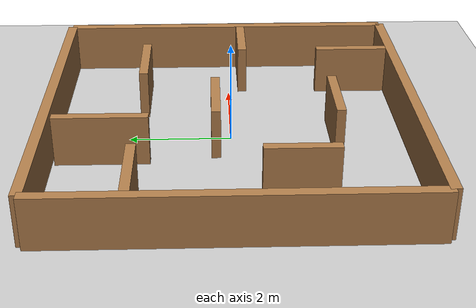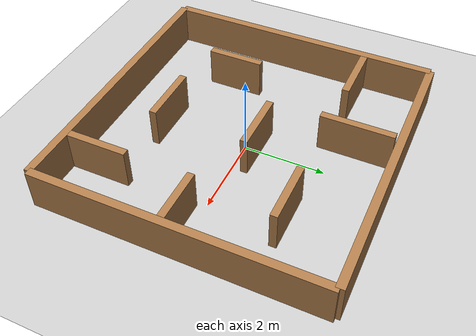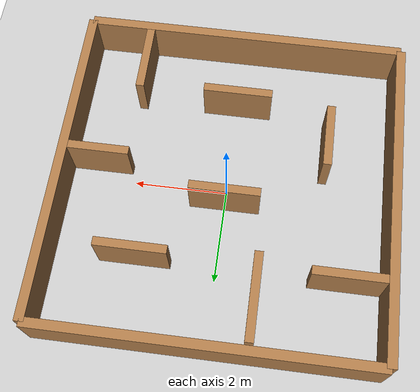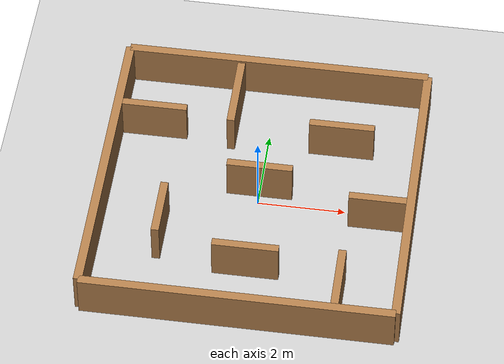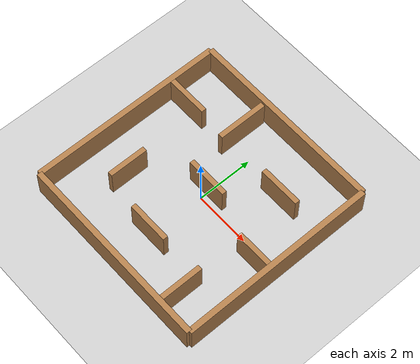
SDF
<?xml version='1.0'?>
<sdf version='1.7'>
  <world name='boxhouse_square_maze'>

    <light name='sun' type='directional'>
      <cast_shadows>1</cast_shadows>
      <pose>0 0 10 0 -0 0</pose>
      <diffuse>0.8 0.8 0.8 1</diffuse>
      <specular>0.2 0.2 0.2 1</specular>
      <attenuation><range>1000</range><constant>0.9</constant><linear>0.01</linear><quadratic>0.001</quadratic></attenuation>
      <direction>-0.5 0.1 -0.9</direction>
    </light>

    <model name='ground_plane'>
      <static>1</static>
      <link name='link'>
        <collision name='collision'>
          <geometry><plane><normal>0 0 1</normal><size>100 100</size></plane></geometry>
          <surface><contact><collide_bitmask>65535</collide_bitmask><ode/></contact><friction><ode><mu>100</mu><mu2>50</mu2></ode></friction></surface>
          <max_contacts>10</max_contacts>
        </collision>
        <visual name='visual'>
          <cast_shadows>0</cast_shadows>
          <geometry><plane><normal>0 0 1</normal><size>100 100</size></plane></geometry>
          <material><script><uri>file://media/materials/scripts/gazebo.material</uri><name>Gazebo/Grey</name></script></material>
        </visual>
        <self_collide>0</self_collide>
      </link>
    </model>

    <!-- ==================== Outer walls (4) ==================== -->

    <model name='wall_outer_top'>
      <static>1</static>
      <pose>0 3.5 0.5 0 0 0</pose>
      <link name='link'>
        <collision name='collision'>
          <geometry><box><size>7.0 0.20 1.0</size></box></geometry>
        </collision>
        <visual name='visual'>
          <geometry><box><size>7.0 0.20 1.0</size></box></geometry>
          <material><script><uri>file://media/materials/scripts/gazebo.material</uri><name>Gazebo/Wood</name></script></material>
        </visual>
      </link>
    </model>

    <model name='wall_outer_bottom'>
      <static>1</static>
      <pose>0 -3.5 0.5 0 0 0</pose>
      <link name='link'>
        <collision name='collision'>
          <geometry><box><size>7.0 0.20 1.0</size></box></geometry>
        </collision>
        <visual name='visual'>
          <geometry><box><size>7.0 0.20 1.0</size></box></geometry>
          <material><script><uri>file://media/materials/scripts/gazebo.material</uri><name>Gazebo/Wood</name></script></material>
        </visual>
      </link>
    </model>

    <model name='wall_outer_left'>
      <static>1</static>
      <pose>-3.5 0 0.5 0 0 0</pose>
      <link name='link'>
        <collision name='collision'>
          <geometry><box><size>0.20 7.0 1.0</size></box></geometry>
        </collision>
        <visual name='visual'>
          <geometry><box><size>0.20 7.0 1.0</size></box></geometry>
          <material><script><uri>file://media/materials/scripts/gazebo.material</uri><name>Gazebo/Wood</name></script></material>
        </visual>
      </link>
    </model>

    <model name='wall_outer_right'>
      <static>1</static>
      <pose>3.5 0 0.5 0 0 0</pose>
      <link name='link'>
        <collision name='collision'>
          <geometry><box><size>0.20 7.0 1.0</size></box></geometry>
        </collision>
        <visual name='visual'>
          <geometry><box><size>0.20 7.0 1.0</size></box></geometry>
          <material><script><uri>file://media/materials/scripts/gazebo.material</uri><name>Gazebo/Wood</name></script></material>
        </visual>
      </link>
    </model>

    <!-- ==================== Inner walls (8) ==================== -->

    <!-- 1. Top-left horizontal wall -->
    <model name='wall_inner_left_top'>
      <static>1</static>
      <pose>-2.65 1.80 0.5 0 0 0</pose>
      <link name='link'>
        <collision name='collision'>
          <geometry><box><size>1.50 0.18 1.0</size></box></geometry>
        </collision>
        <visual name='visual'>
          <geometry><box><size>1.50 0.18 1.0</size></box></geometry>
          <material><script><uri>file://media/materials/scripts/gazebo.material</uri><name>Gazebo/Wood</name></script></material>
        </visual>
      </link>
    </model>

    <!-- 2. Upper-middle vertical wall -->
    <model name='wall_inner_upper_vertical'>
      <static>1</static>
      <pose>-0.85 2.45 0.5 0 0 0</pose>
      <link name='link'>
        <collision name='collision'>
          <geometry><box><size>0.18 1.80 1.0</size></box></geometry>
        </collision>
        <visual name='visual'>
          <geometry><box><size>0.18 1.80 1.0</size></box></geometry>
          <material><script><uri>file://media/materials/scripts/gazebo.material</uri><name>Gazebo/Wood</name></script></material>
        </visual>
      </link>
    </model>

    <!-- 3. Top-right horizontal wall -->
    <model name='wall_inner_right_top'>
      <static>1</static>
      <pose>1.70 1.75 0.5 0 0 0</pose>
      <link name='link'>
        <collision name='collision'>
          <geometry><box><size>1.50 0.18 1.0</size></box></geometry>
        </collision>
        <visual name='visual'>
          <geometry><box><size>1.50 0.18 1.0</size></box></geometry>
          <material><script><uri>file://media/materials/scripts/gazebo.material</uri><name>Gazebo/Wood</name></script></material>
        </visual>
      </link>
    </model>

    <!-- 4. Central horizontal wall -->
    <model name='wall_inner_center'>
      <static>1</static>
      <pose>0.00 0.30 0.5 0 0 0</pose>
      <link name='link'>
        <collision name='collision'>
          <geometry><box><size>1.50 0.18 1.0</size></box></geometry>
        </collision>
        <visual name='visual'>
          <geometry><box><size>1.50 0.18 1.0</size></box></geometry>
          <material><script><uri>file://media/materials/scripts/gazebo.material</uri><name>Gazebo/Wood</name></script></material>
        </visual>
      </link>
    </model>

    <!-- 5. Right-middle horizontal wall -->
    <model name='wall_inner_right_middle'>
      <static>1</static>
      <pose>2.75 -0.30 0.5 0 0 0</pose>
      <link name='link'>
        <collision name='collision'>
          <geometry><box><size>1.30 0.18 1.0</size></box></geometry>
        </collision>
        <visual name='visual'>
          <geometry><box><size>1.30 0.18 1.0</size></box></geometry>
          <material><script><uri>file://media/materials/scripts/gazebo.material</uri><name>Gazebo/Wood</name></script></material>
        </visual>
      </link>
    </model>

    <!-- 6. Left-bottom vertical wall -->
    <model name='wall_inner_left_bottom_vertical'>
      <static>1</static>
      <pose>-2.05 -1.20 0.5 0 0 0</pose>
      <link name='link'>
        <collision name='collision'>
          <geometry><box><size>0.18 1.40 1.0</size></box></geometry>
        </collision>
        <visual name='visual'>
          <geometry><box><size>0.18 1.40 1.0</size></box></geometry>
          <material><script><uri>file://media/materials/scripts/gazebo.material</uri><name>Gazebo/Wood</name></script></material>
        </visual>
      </link>
    </model>

    <!-- 7. Lower-middle horizontal wall -->
    <model name='wall_inner_lower_middle'>
      <static>1</static>
      <pose>0.00 -2.05 0.5 0 0 0</pose>
      <link name='link'>
        <collision name='collision'>
          <geometry><box><size>1.50 0.18 1.0</size></box></geometry>
        </collision>
        <visual name='visual'>
          <geometry><box><size>1.50 0.18 1.0</size></box></geometry>
          <material><script><uri>file://media/materials/scripts/gazebo.material</uri><name>Gazebo/Wood</name></script></material>
        </visual>
      </link>
    </model>

    <!-- 8. Right-bottom vertical wall -->
    <model name='wall_inner_right_bottom_vertical'>
      <static>1</static>
      <pose>2.15 -2.65 0.5 0 0 0</pose>
      <link name='link'>
        <collision name='collision'>
          <geometry><box><size>0.18 1.50 1.0</size></box></geometry>
        </collision>
        <visual name='visual'>
          <geometry><box><size>0.18 1.50 1.0</size></box></geometry>
          <material><script><uri>file://media/materials/scripts/gazebo.material</uri><name>Gazebo/Wood</name></script></material>
        </visual>
      </link>
    </model>

    <!-- ==================== Obstacles ==================== -->
    <!-- (cylinders and black box removed) -->

    <physics type='ode'>
      <max_step_size>0.001</max_step_size>
      <real_time_factor>1</real_time_factor>
      <real_time_update_rate>1000</real_time_update_rate>
    </physics>

    <scene>
      <ambient>0.4 0.4 0.4 1</ambient>
      <background>0.7 0.7 0.7 1</background>
      <shadows>1</shadows>
    </scene>

  </world>
</sdf>
